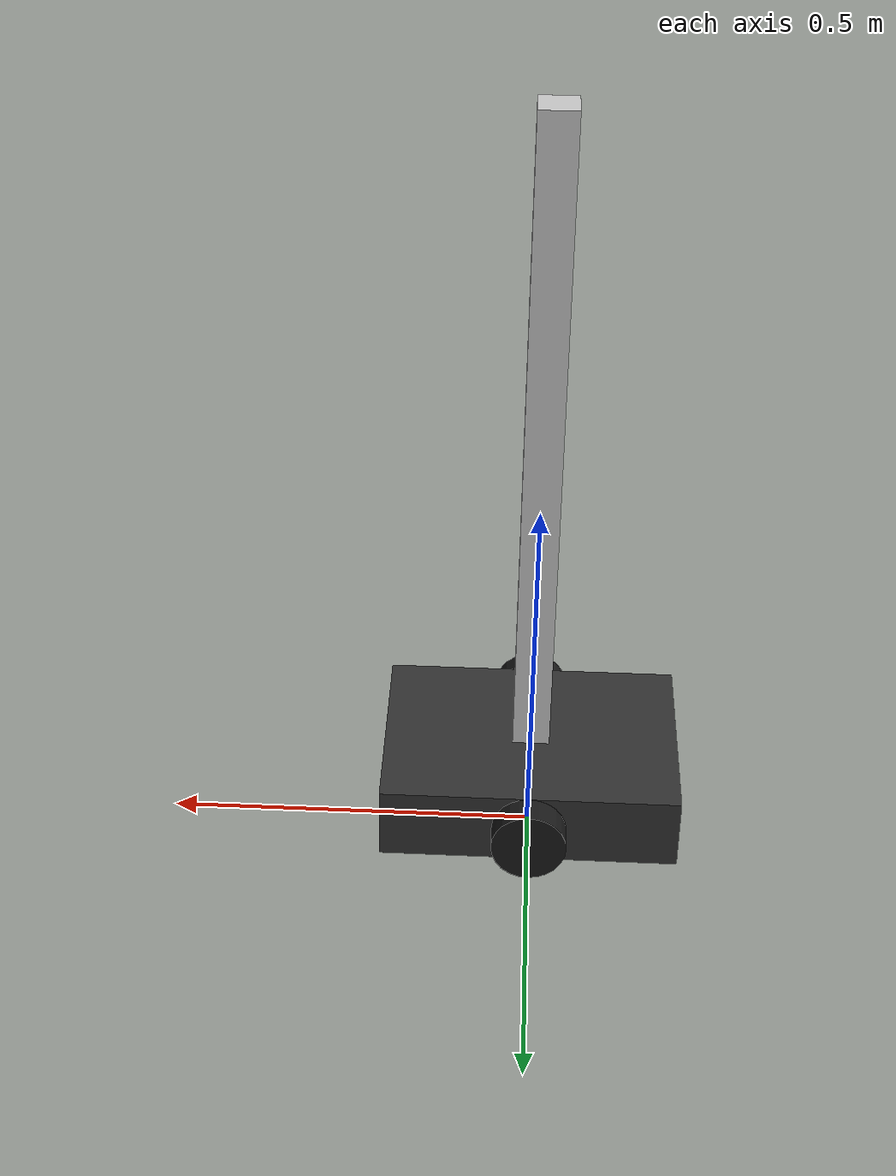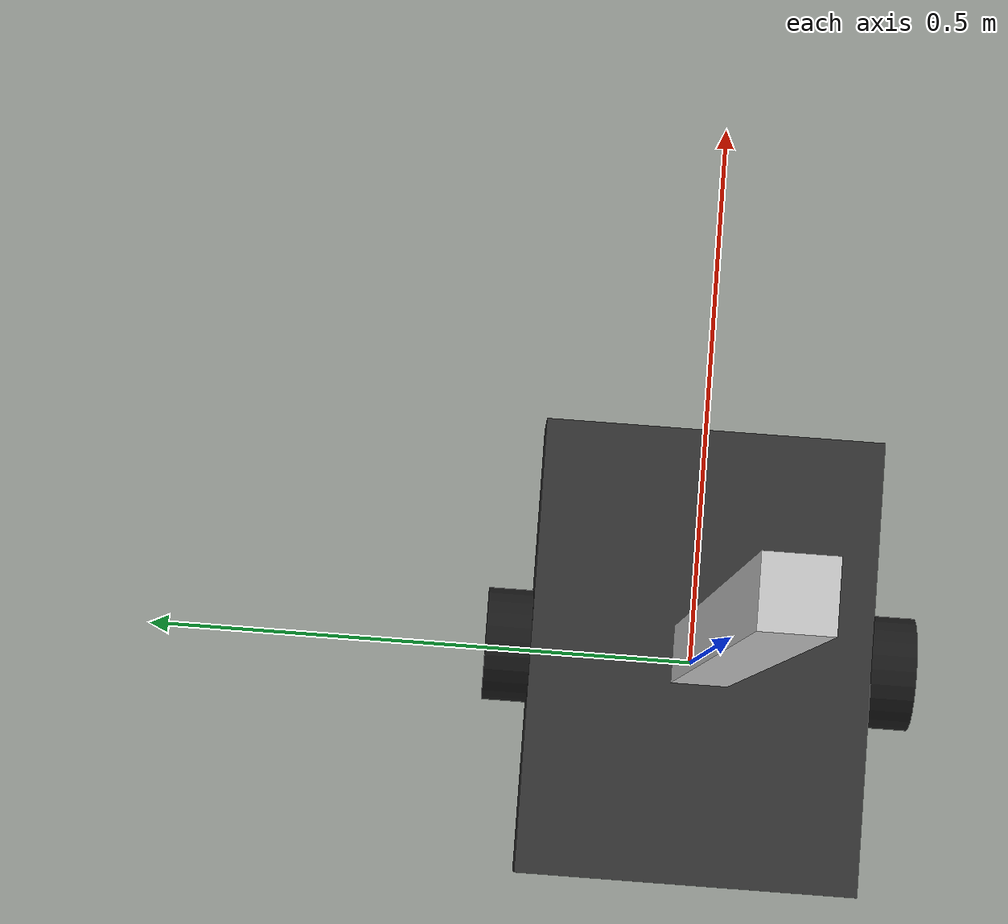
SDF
<?xml version="1.0" ?>
<sdf version="1.8">
    <model name="my_robot">
        <pose>0 0 0.05 0 0 0</pose>

        <!-- Base Footprint (for Nav2 compatibility) -->
        <link name="base_footprint"/>

        <link name="chassis">
            <pose>0 0 0.05 0 0 0</pose>
            <inertial>
                <pose>0 0 0.1 0 0 0</pose>
                <mass>15.0</mass>
                <inertia>
                    <ixx>0.8</ixx><ixy>0</ixy><ixz>0</ixz>
                    <iyy>1.0</iyy><iyz>0</iyz>
                    <izz>0.5</izz>
                </inertia>
            </inertial>

            <visual name="base_vis">
                <geometry><box><size>0.4 0.3 0.1</size></box></geometry>
                <material><ambient>0.2 0.2 0.2 1</ambient></material>
            </visual>
            <collision name="base_col">
                <geometry><box><size>0.4 0.3 0.1</size></box></geometry>
            </collision>

            <!-- Direk (Mast) -->
            <visual name="mast_vis">
                <pose>0 0 0.5 0 0 0</pose>
                <geometry><box><size>0.05 0.05 0.9</size></box></geometry>
                <material><ambient>0.8 0.8 0.8 1</ambient></material>
            </visual>
            <collision name="mast_col">
                <pose>0 0 0.5 0 0 0</pose>
                <geometry><box><size>0.05 0.05 0.9</size></box></geometry>
            </collision>

            <!-- Kamera (Tepede - Hafif Yukarı Bakış) -->
            <sensor name="camera" type="camera">
                <pose>0.05 0 0.95 0 -0.2 0</pose>
                <topic>camera</topic>
                <update_rate>30</update_rate>
                <camera>
                    <horizontal_fov>1.2</horizontal_fov>
                    <image><width>640</width><height>480</height></image>
                </camera>
                <visualize>true</visualize>
            </sensor>

            <!-- Lidar (Base seviyesinde - Nav2 uyumlu) -->
            <sensor name="lidar" type="gpu_lidar">
                <pose>0.0 0 0.17 0 0 0</pose>
                <topic>scan</topic>
                <update_rate>10</update_rate>
                <gz_frame_id>base_scan</gz_frame_id>
                <lidar>
                    <scan>
                        <horizontal>
                            <samples>360</samples>
                            <resolution>1</resolution>
                            <min_angle>-3.14159</min_angle>
                            <max_angle>3.14159</max_angle>
                        </horizontal>
                    </scan>
                    <range>
                        <min>0.05</min>
                        <max>10.0</max>
                    </range>
                </lidar>
            </sensor>

            <!-- IMU Sensor -->
            <sensor name="imu" type="imu">
                <always_on>true</always_on>
                <update_rate>200</update_rate>
                <topic>imu</topic>
            </sensor>
        </link>

        <!-- Base Scan Link (for TF compatibility) -->
        <link name="base_scan">
            <pose>0.0 0 0.17 0 0 0</pose>
        </link>

        <link name="left_wheel">
            <pose>0 0.17 0.05 -1.5708 0 0</pose>
            <inertial>
                <mass>0.5</mass>
                <inertia>
                    <ixx>0.001</ixx><ixy>0</ixy><ixz>0</ixz>
                    <iyy>0.001</iyy><iyz>0</iyz>
                    <izz>0.001</izz>
                </inertia>
            </inertial>
            <visual name="v">
                <geometry><cylinder><radius>0.05</radius><length>0.04</length></cylinder></geometry>
                <material><ambient>0.1 0.1 0.1 1</ambient></material>
            </visual>
            <collision name="c">
                <geometry><cylinder><radius>0.05</radius><length>0.04</length></cylinder></geometry>
                <surface>
                    <friction>
                        <ode><mu>100000.0</mu><mu2>100000.0</mu2></ode>
                    </friction>
                </surface>
            </collision>
        </link>

        <link name="right_wheel">
            <pose>0 -0.17 0.05 -1.5708 0 0</pose>
            <inertial>
                <mass>0.5</mass>
                <inertia>
                    <ixx>0.001</ixx><ixy>0</ixy><ixz>0</ixz>
                    <iyy>0.001</iyy><iyz>0</iyz>
                    <izz>0.001</izz>
                </inertia>
            </inertial>
            <visual name="v">
                <geometry><cylinder><radius>0.05</radius><length>0.04</length></cylinder></geometry>
                <material><ambient>0.1 0.1 0.1 1</ambient></material>
            </visual>
            <collision name="c">
                <geometry><cylinder><radius>0.05</radius><length>0.04</length></cylinder></geometry>
                <surface>
                    <friction>
                        <ode><mu>100000.0</mu><mu2>100000.0</mu2></ode>
                    </friction>
                </surface>
            </collision>
        </link>

        <link name="caster">
            <pose>-0.15 0 0.025 0 0 0</pose>
            <inertial>
                <mass>0.1</mass>
                <inertia>
                    <ixx>0.0001</ixx><ixy>0</ixy><ixz>0</ixz>
                    <iyy>0.0001</iyy><iyz>0</iyz>
                    <izz>0.0001</izz>
                </inertia>
            </inertial>
            <visual name="v">
                <geometry><sphere><radius>0.025</radius></sphere></geometry>
                <material><ambient>0.3 0.3 0.3 1</ambient></material>
            </visual>
            <collision name="c">
                <geometry><sphere><radius>0.025</radius></sphere></geometry>
                <surface>
                    <friction>
                        <ode><mu>0.0</mu><mu2>0.0</mu2></ode>
                    </friction>
                </surface>
            </collision>
        </link>

        <!-- Joints -->
        <joint name="base_joint" type="fixed">
            <parent>base_footprint</parent>
            <child>chassis</child>
        </joint>

        <joint name="scan_joint" type="fixed">
            <parent>chassis</parent>
            <child>base_scan</child>
        </joint>

        <joint name="left_wheel_joint" type="revolute">
            <parent>chassis</parent>
            <child>left_wheel</child>
            <axis><xyz>0 0 1</xyz></axis>
        </joint>

        <joint name="right_wheel_joint" type="revolute">
            <parent>chassis</parent>
            <child>right_wheel</child>
            <axis><xyz>0 0 1</xyz></axis>
        </joint>

        <joint name="caster_joint" type="ball">
            <parent>chassis</parent>
            <child>caster</child>
        </joint>

        <!-- Diff Drive Plugin -->
        <plugin filename="gz-sim-diff-drive-system" name="gz::sim::systems::DiffDrive">
            <left_joint>left_wheel_joint</left_joint>
            <right_joint>right_wheel_joint</right_joint>
            <wheel_separation>0.34</wheel_separation>
            <wheel_radius>0.05</wheel_radius>
            <max_linear_acceleration>1.0</max_linear_acceleration>
            <topic>cmd_vel</topic>
            <odom_topic>odom</odom_topic>
            <frame_id>odom</frame_id>
            <child_frame_id>base_footprint</child_frame_id>
            <odom_publisher_frequency>30</odom_publisher_frequency>
            <tf_topic>/tf</tf_topic>
        </plugin>

        <!-- Joint State Publisher Plugin -->
        <plugin filename="gz-sim-joint-state-publisher-system" name="gz::sim::systems::JointStatePublisher">
            <topic>joint_states</topic>
            <joint_name>left_wheel_joint</joint_name>
            <joint_name>right_wheel_joint</joint_name>
        </plugin>

    </model>
</sdf>
